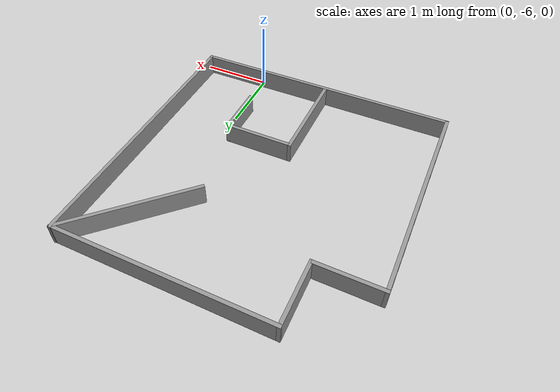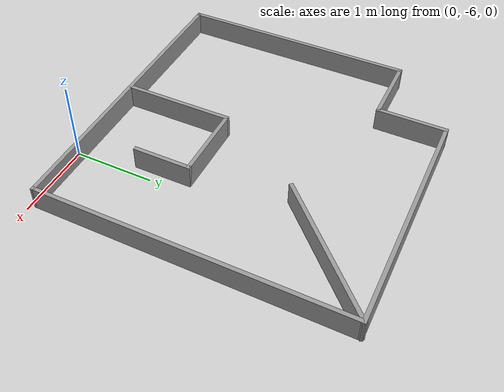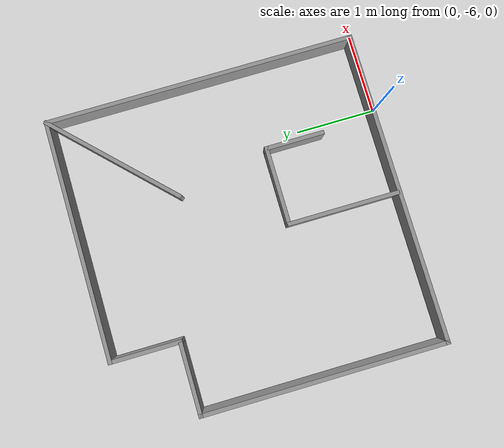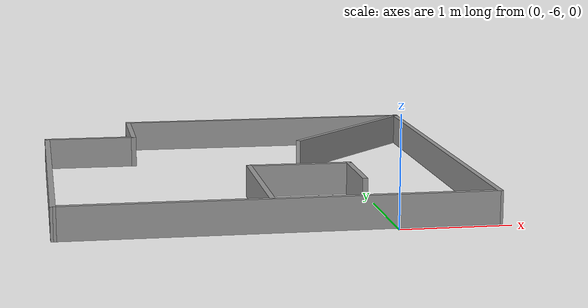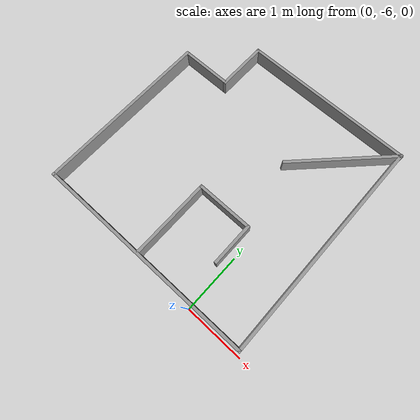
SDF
<?xml version='1.0'?>
<sdf version='1.7'>
  <model name='labyrinth_small'>
    <pose>-1.0049 -2.97653 0 0 -0 0</pose>
    <link name='Wall_12'>
      <collision name='Wall_12_Collision'>
        <geometry>
          <box>
            <size>0.75 0.05 0.3</size>
          </box>
        </geometry>
        <pose>0 0 0.15 0 -0 0</pose>
      </collision>
      <visual name='Wall_12_Visual'>
        <pose>0 0 0.15 0 -0 0</pose>
        <geometry>
          <box>
            <size>0.75 0.05 0.3</size>
          </box>
        </geometry>
        <material>
          <script>
            <uri>file://media/materials/scripts/gazebo.material</uri>
            <name>Gazebo/Grey</name>
          </script>
          <ambient>1 1 1 1</ambient>
        </material>
        <meta>
          <layer>0</layer>
        </meta>
      </visual>
      <pose>0.867897 -1.91647 0 0 -0 -1.5708</pose>
    </link>
    <link name='Wall_14'>
      <collision name='Wall_14_Collision'>
        <geometry>
          <box>
            <size>0.9 0.05 0.3</size>
          </box>
        </geometry>
        <pose>0 0 0.15 0 -0 0</pose>
      </collision>
      <visual name='Wall_14_Visual'>
        <pose>0 0 0.15 0 -0 0</pose>
        <geometry>
          <box>
            <size>0.9 0.05 0.3</size>
          </box>
        </geometry>
        <material>
          <script>
            <uri>file://media/materials/scripts/gazebo.material</uri>
            <name>Gazebo/Grey</name>
          </script>
          <ambient>1 1 1 1</ambient>
        </material>
        <meta>
          <layer>0</layer>
        </meta>
      </visual>
      <pose>-1.50032 0.048596 0 0 -0 0.000165</pose>
    </link>
    <link name='Wall_16'>
      <collision name='Wall_16_Collision'>
        <geometry>
          <box>
            <size>0.9 0.05 0.3</size>
          </box>
        </geometry>
        <pose>0 0 0.15 0 -0 0</pose>
      </collision>
      <visual name='Wall_16_Visual'>
        <pose>0 0 0.15 0 -0 0</pose>
        <geometry>
          <box>
            <size>0.9 0.05 0.3</size>
          </box>
        </geometry>
        <material>
          <script>
            <uri>file://media/materials/scripts/gazebo.material</uri>
            <name>Gazebo/Grey</name>
          </script>
          <ambient>1 1 1 1</ambient>
        </material>
        <meta>
          <layer>0</layer>
        </meta>
      </visual>
      <pose>-1.0481 0.473622 0 0 -0 -1.5708</pose>
    </link>
    <link name='Wall_2'>
      <collision name='Wall_2_Collision'>
        <geometry>
          <box>
            <size>3.9 0.05 0.3</size>
          </box>
        </geometry>
        <pose>0 0 0.15 0 -0 0</pose>
      </collision>
      <visual name='Wall_2_Visual'>
        <pose>0 0 0.15 0 -0 0</pose>
        <geometry>
          <box>
            <size>3.9 0.05 0.3</size>
          </box>
        </geometry>
        <material>
          <script>
            <uri>file://media/materials/scripts/gazebo.material</uri>
            <name>Gazebo/Grey</name>
          </script>
          <ambient>1 1 1 1</ambient>
        </material>
        <meta>
          <layer>0</layer>
        </meta>
      </visual>
      <pose>1.9149 -1.01847 0 0 -0 -1.5708</pose>
    </link>
    <link name='Wall_21'>
      <collision name='Wall_21_Collision'>
        <geometry>
          <box>
            <size>3.05 0.05 0.3</size>
          </box>
        </geometry>
        <pose>0 0 0.15 0 -0 0</pose>
      </collision>
      <visual name='Wall_21_Visual'>
        <pose>0 0 0.15 0 -0 0</pose>
        <geometry>
          <box>
            <size>3.05 0.05 0.3</size>
          </box>
        </geometry>
        <material>
          <script>
            <uri>file://media/materials/scripts/gazebo.material</uri>
            <name>Gazebo/Grey</name>
          </script>
          <ambient>1 1 1 1</ambient>
        </material>
        <meta>
          <layer>0</layer>
        </meta>
      </visual>
      <pose>-1.9251 -1.45147 0 0 -0 -1.5708</pose>
    </link>
    <link name='Wall_23'>
      <collision name='Wall_23_Collision'>
        <geometry>
          <box>
            <size>3.01301 0.05 0.3</size>
          </box>
        </geometry>
        <pose>0 0 0.15 0 -0 0</pose>
      </collision>
      <visual name='Wall_23_Visual'>
        <pose>0 0 0.15 0 -0 0</pose>
        <geometry>
          <box>
            <size>3.01301 0.05 0.3</size>
          </box>
        </geometry>
        <material>
          <script>
            <uri>file://media/materials/scripts/gazebo.material</uri>
            <name>Gazebo/Grey</name>
          </script>
          <ambient>1 1 1 1</ambient>
        </material>
        <meta>
          <layer>0</layer>
        </meta>
      </visual>
      <pose>0.433397 0.902526 0 0 -0 0.0027</pose>
    </link>
    <link name='Wall_3'>
      <collision name='Wall_3_Collision'>
        <geometry>
          <box>
            <size>3.89001 0.05 0.3</size>
          </box>
        </geometry>
        <pose>0 0 0.15 0 -0 0</pose>
      </collision>
      <visual name='Wall_3_Visual'>
        <pose>0 0 0.15 0 -0 0</pose>
        <geometry>
          <box>
            <size>3.89001 0.05 0.3</size>
          </box>
        </geometry>
        <material>
          <script>
            <uri>file://media/materials/scripts/gazebo.material</uri>
            <name>Gazebo/Grey</name>
          </script>
          <ambient>1 1 1 1</ambient>
        </material>
        <meta>
          <layer>0</layer>
        </meta>
      </visual>
      <pose>-0.005103 -2.94747 0 0 -0 -3.13951</pose>
    </link>
    <link name='Wall_6'>
      <collision name='Wall_6_Collision'>
        <geometry>
          <box>
            <size>1.9 0.05 0.3</size>
          </box>
        </geometry>
        <pose>0 0 0.15 0 -0 0</pose>
      </collision>
      <visual name='Wall_6_Visual'>
        <pose>0 0 0.15 0 -0 0</pose>
        <geometry>
          <box>
            <size>1.9 0.05 0.3</size>
          </box>
        </geometry>
        <material>
          <script>
            <uri>file://media/materials/scripts/gazebo.material</uri>
            <name>Gazebo/Grey</name>
          </script>
          <ambient>1 1 1 1</ambient>
        </material>
        <meta>
          <layer>0</layer>
        </meta>
      </visual>
      <pose>1.2609 0.252526 0 0 -0 -2.35619</pose>
    </link>
    <link name='Wall_8'>
      <collision name='Wall_8_Collision'>
        <geometry>
          <box>
            <size>1.40048 0.05 0.3</size>
          </box>
        </geometry>
        <pose>0 0 0.15 0 -0 0</pose>
      </collision>
      <visual name='Wall_8_Visual'>
        <pose>0 0 0.15 0 -0 0</pose>
        <geometry>
          <box>
            <size>1.40048 0.05 0.3</size>
          </box>
        </geometry>
        <material>
          <script>
            <uri>file://media/materials/scripts/gazebo.material</uri>
            <name>Gazebo/Grey</name>
          </script>
          <ambient>1 1 1 1</ambient>
        </material>
        <meta>
          <layer>0</layer>
        </meta>
      </visual>
      <pose>-0.082103 -2.24147 0 0 -0 1.5708</pose>
    </link>
    <link name='Wall_9'>
      <collision name='Wall_9_Collision'>
        <geometry>
          <box>
            <size>1 0.05 0.3</size>
          </box>
        </geometry>
        <pose>0 0 0.15 0 -0 0</pose>
      </collision>
      <visual name='Wall_9_Visual'>
        <pose>0 0 0.15 0 -0 0</pose>
        <geometry>
          <box>
            <size>1 0.05 0.3</size>
          </box>
        </geometry>
        <material>
          <script>
            <uri>file://media/materials/scripts/gazebo.material</uri>
            <name>Gazebo/Grey</name>
          </script>
          <ambient>1 1 1 1</ambient>
        </material>
        <meta>
          <layer>0</layer>
        </meta>
      </visual>
      <pose>0.392897 -1.56647 0 0 -0 0</pose>
    </link>
    <static>1</static>
  </model>
</sdf>
